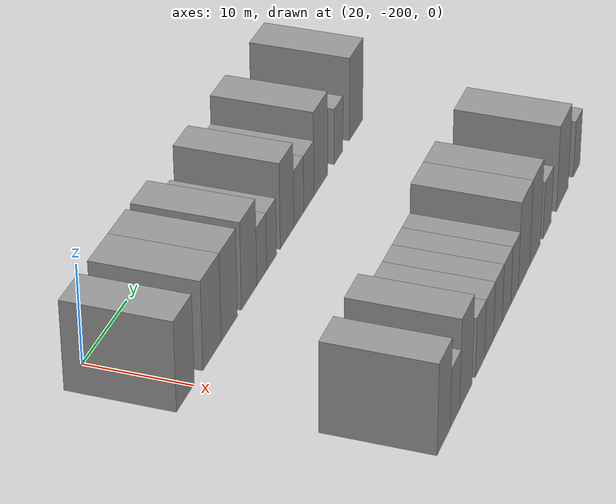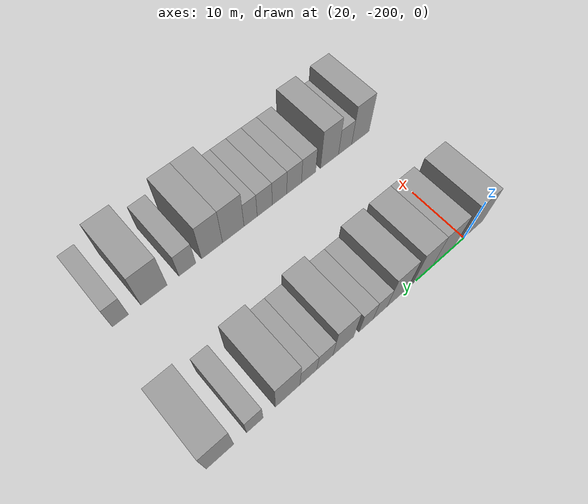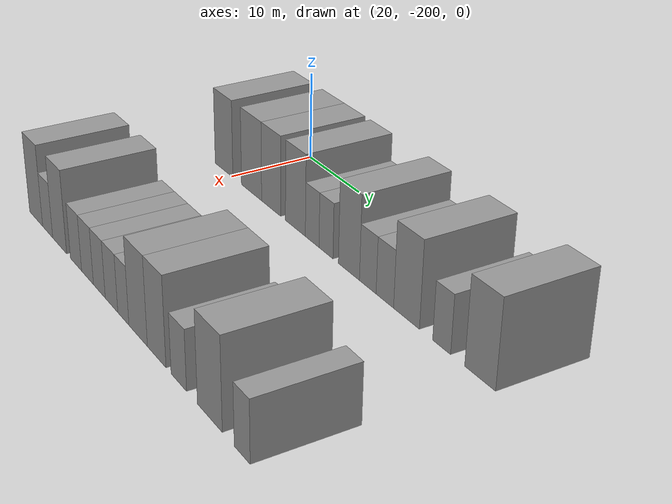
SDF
<sdf version="1.6">
 <world name="default">
  <model name="building_1">
   <static>1</static>
   <pose>25.0000 -201.9067 0 0.000000 0.000000 0.000000</pose>
   <link name="link">
    <pose>0 0 4.50 0 0 0</pose>
    <collision name="collision"><geometry><box><size>10.0000 4.1866 9.0000</size></box></geometry></collision>
    <visual name="visual">
     <cast_shadows>0</cast_shadows>
     <geometry><box><size>10.0000 4.1866 9.0000</size></box></geometry>
     <material>
      <script>
       <uri>model://grey_wall/materials/scripts</uri>
       <uri>model://grey_wall/materials/textures</uri>
       <name>vrc/grey_wall</name>
      </script>
     </material>
    </visual>
   </link>
  </model>
  <model name="building_2">
   <static>1</static>
   <pose>25.0000 -195.5699 0 0.000000 0.000000 0.000000</pose>
   <link name="link">
    <pose>0 0 4.50 0 0 0</pose>
    <collision name="collision"><geometry><box><size>10.0000 4.4871 9.0000</size></box></geometry></collision>
    <visual name="visual">
     <cast_shadows>0</cast_shadows>
     <geometry><box><size>10.0000 4.4871 9.0000</size></box></geometry>
     <material>
      <script>
       <uri>model://grey_wall/materials/scripts</uri>
       <uri>model://grey_wall/materials/textures</uri>
       <name>vrc/grey_wall</name>
      </script>
     </material>
    </visual>
   </link>
  </model>
  <model name="building_3">
   <static>1</static>
   <pose>25.0000 -191.3050 0 0.000000 0.000000 0.000000</pose>
   <link name="link">
    <pose>0 0 4.50 0 0 0</pose>
    <collision name="collision"><geometry><box><size>10.0000 4.0426 9.0000</size></box></geometry></collision>
    <visual name="visual">
     <cast_shadows>0</cast_shadows>
     <geometry><box><size>10.0000 4.0426 9.0000</size></box></geometry>
     <material>
      <script>
       <uri>model://grey_wall/materials/scripts</uri>
       <uri>model://grey_wall/materials/textures</uri>
       <name>vrc/grey_wall</name>
      </script>
     </material>
    </visual>
   </link>
  </model>
  <model name="building_4">
   <static>1</static>
   <pose>25.0000 -186.2852 0 0.000000 0.000000 0.000000</pose>
   <link name="link">
    <pose>0 0 4.50 0 0 0</pose>
    <collision name="collision"><geometry><box><size>10.0000 3.9970 9.0000</size></box></geometry></collision>
    <visual name="visual">
     <cast_shadows>0</cast_shadows>
     <geometry><box><size>10.0000 3.9970 9.0000</size></box></geometry>
     <material>
      <script>
       <uri>model://grey_wall/materials/scripts</uri>
       <uri>model://grey_wall/materials/textures</uri>
       <name>vrc/grey_wall</name>
      </script>
     </material>
    </visual>
   </link>
  </model>
  <model name="building_5">
   <static>1</static>
   <pose>25.0000 -182.9670 0 0.000000 0.000000 0.000000</pose>
   <link name="link">
    <pose>0 0 3.00 0 0 0</pose>
    <collision name="collision"><geometry><box><size>10.0000 2.6395 6.0000</size></box></geometry></collision>
    <visual name="visual">
     <cast_shadows>0</cast_shadows>
     <geometry><box><size>10.0000 2.6395 6.0000</size></box></geometry>
     <material>
      <script>
       <uri>model://grey_wall/materials/scripts</uri>
       <uri>model://grey_wall/materials/textures</uri>
       <name>vrc/grey_wall</name>
      </script>
     </material>
    </visual>
   </link>
  </model>
  <model name="building_6">
   <static>1</static>
   <pose>25.0000 -180.3397 0 0.000000 0.000000 0.000000</pose>
   <link name="link">
    <pose>0 0 3.00 0 0 0</pose>
    <collision name="collision"><geometry><box><size>10.0000 2.6151 6.0000</size></box></geometry></collision>
    <visual name="visual">
     <cast_shadows>0</cast_shadows>
     <geometry><box><size>10.0000 2.6151 6.0000</size></box></geometry>
     <material>
      <script>
       <uri>model://grey_wall/materials/scripts</uri>
       <uri>model://grey_wall/materials/textures</uri>
       <name>vrc/grey_wall</name>
      </script>
     </material>
    </visual>
   </link>
  </model>
  <model name="building_7">
   <static>1</static>
   <pose>25.0000 -176.1576 0 0.000000 0.000000 0.000000</pose>
   <link name="link">
    <pose>0 0 4.50 0 0 0</pose>
    <collision name="collision"><geometry><box><size>10.0000 3.7491 9.0000</size></box></geometry></collision>
    <visual name="visual">
     <cast_shadows>0</cast_shadows>
     <geometry><box><size>10.0000 3.7491 9.0000</size></box></geometry>
     <material>
      <script>
       <uri>model://grey_wall/materials/scripts</uri>
       <uri>model://grey_wall/materials/textures</uri>
       <name>vrc/grey_wall</name>
      </script>
     </material>
    </visual>
   </link>
  </model>
  <model name="building_8">
   <static>1</static>
   <pose>25.0000 -172.8619 0 0.000000 0.000000 0.000000</pose>
   <link name="link">
    <pose>0 0 3.00 0 0 0</pose>
    <collision name="collision"><geometry><box><size>10.0000 2.8423 6.0000</size></box></geometry></collision>
    <visual name="visual">
     <cast_shadows>0</cast_shadows>
     <geometry><box><size>10.0000 2.8423 6.0000</size></box></geometry>
     <material>
      <script>
       <uri>model://grey_wall/materials/scripts</uri>
       <uri>model://grey_wall/materials/textures</uri>
       <name>vrc/grey_wall</name>
      </script>
     </material>
    </visual>
   </link>
  </model>
  <model name="building_9">
   <static>1</static>
   <pose>25.0000 -169.9930 0 0.000000 0.000000 0.000000</pose>
   <link name="link">
    <pose>0 0 3.00 0 0 0</pose>
    <collision name="collision"><geometry><box><size>10.0000 2.8954 6.0000</size></box></geometry></collision>
    <visual name="visual">
     <cast_shadows>0</cast_shadows>
     <geometry><box><size>10.0000 2.8954 6.0000</size></box></geometry>
     <material>
      <script>
       <uri>model://grey_wall/materials/scripts</uri>
       <uri>model://grey_wall/materials/textures</uri>
       <name>vrc/grey_wall</name>
      </script>
     </material>
    </visual>
   </link>
  </model>
  <model name="building_10">
   <static>1</static>
   <pose>25.0000 -166.5042 0 0.000000 0.000000 0.000000</pose>
   <link name="link">
    <pose>0 0 4.50 0 0 0</pose>
    <collision name="collision"><geometry><box><size>10.0000 4.0820 9.0000</size></box></geometry></collision>
    <visual name="visual">
     <cast_shadows>0</cast_shadows>
     <geometry><box><size>10.0000 4.0820 9.0000</size></box></geometry>
     <material>
      <script>
       <uri>model://grey_wall/materials/scripts</uri>
       <uri>model://grey_wall/materials/textures</uri>
       <name>vrc/grey_wall</name>
      </script>
     </material>
    </visual>
   </link>
  </model>
  <model name="building_11">
   <static>1</static>
   <pose>25.0000 -161.1423 0 0.000000 0.000000 0.000000</pose>
   <link name="link">
    <pose>0 0 3.00 0 0 0</pose>
    <collision name="collision"><geometry><box><size>10.0000 2.6419 6.0000</size></box></geometry></collision>
    <visual name="visual">
     <cast_shadows>0</cast_shadows>
     <geometry><box><size>10.0000 2.6419 6.0000</size></box></geometry>
     <material>
      <script>
       <uri>model://grey_wall/materials/scripts</uri>
       <uri>model://grey_wall/materials/textures</uri>
       <name>vrc/grey_wall</name>
      </script>
     </material>
    </visual>
   </link>
  </model>
  <model name="building_12">
   <static>1</static>
   <pose>25.0000 -155.7077 0 0.000000 0.000000 0.000000</pose>
   <link name="link">
    <pose>0 0 4.50 0 0 0</pose>
    <collision name="collision"><geometry><box><size>10.0000 4.2272 9.0000</size></box></geometry></collision>
    <visual name="visual">
     <cast_shadows>0</cast_shadows>
     <geometry><box><size>10.0000 4.2272 9.0000</size></box></geometry>
     <material>
      <script>
       <uri>model://grey_wall/materials/scripts</uri>
       <uri>model://grey_wall/materials/textures</uri>
       <name>vrc/grey_wall</name>
      </script>
     </material>
    </visual>
   </link>
  </model>
  <model name="building_100">
   <static>1</static>
   <pose>47.0000 -201.1141 0 0.000000 0.000000 0.000000</pose>
   <link name="link">
    <pose>0 0 4.50 0 0 0</pose>
    <collision name="collision"><geometry><box><size>10.0000 3.7717 9.0000</size></box></geometry></collision>
    <visual name="visual">
     <cast_shadows>0</cast_shadows>
     <geometry><box><size>10.0000 3.7717 9.0000</size></box></geometry>
     <material>
      <script>
       <uri>model://grey_wall/materials/scripts</uri>
       <uri>model://grey_wall/materials/textures</uri>
       <name>vrc/grey_wall</name>
      </script>
     </material>
    </visual>
   </link>
  </model>
  <model name="building_101">
   <static>1</static>
   <pose>47.0000 -197.8253 0 0.000000 0.000000 0.000000</pose>
   <link name="link">
    <pose>0 0 3.00 0 0 0</pose>
    <collision name="collision"><geometry><box><size>10.0000 2.8060 6.0000</size></box></geometry></collision>
    <visual name="visual">
     <cast_shadows>0</cast_shadows>
     <geometry><box><size>10.0000 2.8060 6.0000</size></box></geometry>
     <material>
      <script>
       <uri>model://grey_wall/materials/scripts</uri>
       <uri>model://grey_wall/materials/textures</uri>
       <name>vrc/grey_wall</name>
      </script>
     </material>
    </visual>
   </link>
  </model>
  <model name="building_102">
   <static>1</static>
   <pose>47.0000 -194.5487 0 0.000000 0.000000 0.000000</pose>
   <link name="link">
    <pose>0 0 4.50 0 0 0</pose>
    <collision name="collision"><geometry><box><size>10.0000 3.7472 9.0000</size></box></geometry></collision>
    <visual name="visual">
     <cast_shadows>0</cast_shadows>
     <geometry><box><size>10.0000 3.7472 9.0000</size></box></geometry>
     <material>
      <script>
       <uri>model://grey_wall/materials/scripts</uri>
       <uri>model://grey_wall/materials/textures</uri>
       <name>vrc/grey_wall</name>
      </script>
     </material>
    </visual>
   </link>
  </model>
  <model name="building_103">
   <static>1</static>
   <pose>47.0000 -190.2454 0 0.000000 0.000000 0.000000</pose>
   <link name="link">
    <pose>0 0 3.00 0 0 0</pose>
    <collision name="collision"><geometry><box><size>10.0000 2.8595 6.0000</size></box></geometry></collision>
    <visual name="visual">
     <cast_shadows>0</cast_shadows>
     <geometry><box><size>10.0000 2.8595 6.0000</size></box></geometry>
     <material>
      <script>
       <uri>model://grey_wall/materials/scripts</uri>
       <uri>model://grey_wall/materials/textures</uri>
       <name>vrc/grey_wall</name>
      </script>
     </material>
    </visual>
   </link>
  </model>
  <model name="building_104">
   <static>1</static>
   <pose>47.0000 -187.3549 0 0.000000 0.000000 0.000000</pose>
   <link name="link">
    <pose>0 0 3.00 0 0 0</pose>
    <collision name="collision"><geometry><box><size>10.0000 2.9215 6.0000</size></box></geometry></collision>
    <visual name="visual">
     <cast_shadows>0</cast_shadows>
     <geometry><box><size>10.0000 2.9215 6.0000</size></box></geometry>
     <material>
      <script>
       <uri>model://grey_wall/materials/scripts</uri>
       <uri>model://grey_wall/materials/textures</uri>
       <name>vrc/grey_wall</name>
      </script>
     </material>
    </visual>
   </link>
  </model>
  <model name="building_105">
   <static>1</static>
   <pose>47.0000 -184.4824 0 0.000000 0.000000 0.000000</pose>
   <link name="link">
    <pose>0 0 3.00 0 0 0</pose>
    <collision name="collision"><geometry><box><size>10.0000 2.8235 6.0000</size></box></geometry></collision>
    <visual name="visual">
     <cast_shadows>0</cast_shadows>
     <geometry><box><size>10.0000 2.8235 6.0000</size></box></geometry>
     <material>
      <script>
       <uri>model://grey_wall/materials/scripts</uri>
       <uri>model://grey_wall/materials/textures</uri>
       <name>vrc/grey_wall</name>
      </script>
     </material>
    </visual>
   </link>
  </model>
  <model name="building_106">
   <static>1</static>
   <pose>47.0000 -181.6299 0 0.000000 0.000000 0.000000</pose>
   <link name="link">
    <pose>0 0 3.00 0 0 0</pose>
    <collision name="collision"><geometry><box><size>10.0000 2.8813 6.0000</size></box></geometry></collision>
    <visual name="visual">
     <cast_shadows>0</cast_shadows>
     <geometry><box><size>10.0000 2.8813 6.0000</size></box></geometry>
     <material>
      <script>
       <uri>model://grey_wall/materials/scripts</uri>
       <uri>model://grey_wall/materials/textures</uri>
       <name>vrc/grey_wall</name>
      </script>
     </material>
    </visual>
   </link>
  </model>
  <model name="building_107">
   <static>1</static>
   <pose>47.0000 -178.9550 0 0.000000 0.000000 0.000000</pose>
   <link name="link">
    <pose>0 0 3.00 0 0 0</pose>
    <collision name="collision"><geometry><box><size>10.0000 2.4685 6.0000</size></box></geometry></collision>
    <visual name="visual">
     <cast_shadows>0</cast_shadows>
     <geometry><box><size>10.0000 2.4685 6.0000</size></box></geometry>
     <material>
      <script>
       <uri>model://grey_wall/materials/scripts</uri>
       <uri>model://grey_wall/materials/textures</uri>
       <name>vrc/grey_wall</name>
      </script>
     </material>
    </visual>
   </link>
  </model>
  <model name="building_108">
   <static>1</static>
   <pose>47.0000 -175.7510 0 0.000000 0.000000 0.000000</pose>
   <link name="link">
    <pose>0 0 4.50 0 0 0</pose>
    <collision name="collision"><geometry><box><size>10.0000 3.9395 9.0000</size></box></geometry></collision>
    <visual name="visual">
     <cast_shadows>0</cast_shadows>
     <geometry><box><size>10.0000 3.9395 9.0000</size></box></geometry>
     <material>
      <script>
       <uri>model://grey_wall/materials/scripts</uri>
       <uri>model://grey_wall/materials/textures</uri>
       <name>vrc/grey_wall</name>
      </script>
     </material>
    </visual>
   </link>
  </model>
  <model name="building_109">
   <static>1</static>
   <pose>47.0000 -171.9029 0 0.000000 0.000000 0.000000</pose>
   <link name="link">
    <pose>0 0 4.50 0 0 0</pose>
    <collision name="collision"><geometry><box><size>10.0000 3.7567 9.0000</size></box></geometry></collision>
    <visual name="visual">
     <cast_shadows>0</cast_shadows>
     <geometry><box><size>10.0000 3.7567 9.0000</size></box></geometry>
     <material>
      <script>
       <uri>model://grey_wall/materials/scripts</uri>
       <uri>model://grey_wall/materials/textures</uri>
       <name>vrc/grey_wall</name>
      </script>
     </material>
    </visual>
   </link>
  </model>
  <model name="building_110">
   <static>1</static>
   <pose>47.0000 -167.5541 0 0.000000 0.000000 0.000000</pose>
   <link name="link">
    <pose>0 0 3.00 0 0 0</pose>
    <collision name="collision"><geometry><box><size>10.0000 2.9410 6.0000</size></box></geometry></collision>
    <visual name="visual">
     <cast_shadows>0</cast_shadows>
     <geometry><box><size>10.0000 2.9410 6.0000</size></box></geometry>
     <material>
      <script>
       <uri>model://grey_wall/materials/scripts</uri>
       <uri>model://grey_wall/materials/textures</uri>
       <name>vrc/grey_wall</name>
      </script>
     </material>
    </visual>
   </link>
  </model>
  <model name="building_111">
   <static>1</static>
   <pose>47.0000 -161.8991 0 0.000000 0.000000 0.000000</pose>
   <link name="link">
    <pose>0 0 4.50 0 0 0</pose>
    <collision name="collision"><geometry><box><size>10.0000 4.3691 9.0000</size></box></geometry></collision>
    <visual name="visual">
     <cast_shadows>0</cast_shadows>
     <geometry><box><size>10.0000 4.3691 9.0000</size></box></geometry>
     <material>
      <script>
       <uri>model://grey_wall/materials/scripts</uri>
       <uri>model://grey_wall/materials/textures</uri>
       <name>vrc/grey_wall</name>
      </script>
     </material>
    </visual>
   </link>
  </model>
  <model name="building_112">
   <static>1</static>
   <pose>47.0000 -156.4249 0 0.000000 0.000000 0.000000</pose>
   <link name="link">
    <pose>0 0 3.00 0 0 0</pose>
    <collision name="collision"><geometry><box><size>10.0000 2.5792 6.0000</size></box></geometry></collision>
    <visual name="visual">
     <cast_shadows>0</cast_shadows>
     <geometry><box><size>10.0000 2.5792 6.0000</size></box></geometry>
     <material>
      <script>
       <uri>model://grey_wall/materials/scripts</uri>
       <uri>model://grey_wall/materials/textures</uri>
       <name>vrc/grey_wall</name>
      </script>
     </material>
    </visual>
   </link>
  </model>
 </world>
</sdf>
